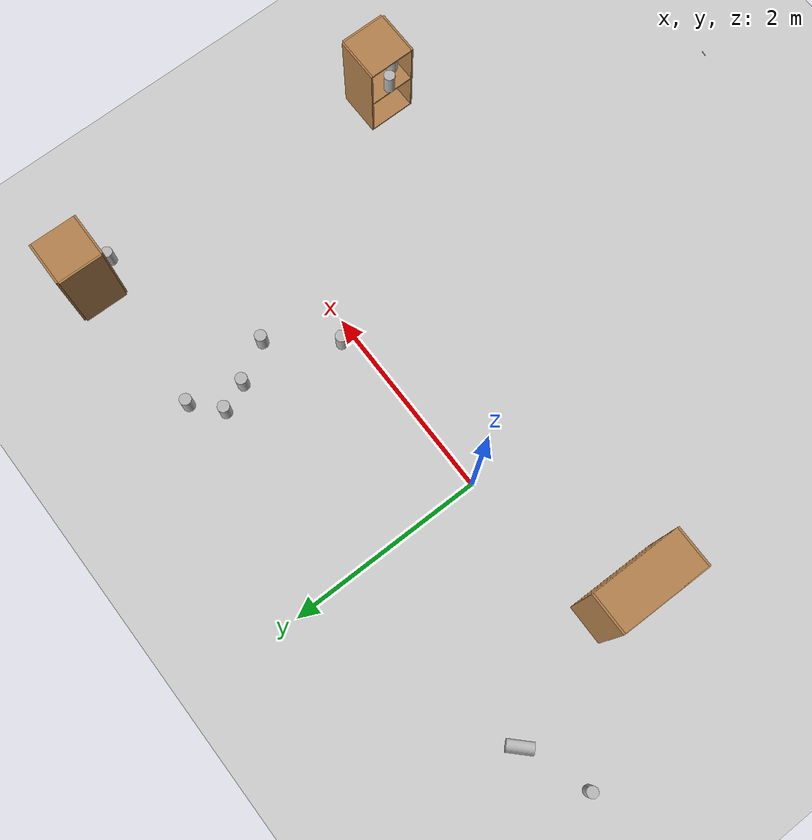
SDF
<sdf version="1.4">
 <world name="default">
  <model name="ground_plane">
   <static>1</static>
   <link name="link">
    <collision name="collision">
     <geometry><plane><normal>0 0 1</normal><size>100 100</size></plane></geometry>
     <surface><friction><ode><mu>100</mu><mu2>50</mu2></ode></friction></surface>
    </collision>
    <visual name="visual">
     <cast_shadows>0</cast_shadows>
     <geometry><plane><normal>0 0 1</normal><size>100 100</size></plane></geometry>
     <material>
      <script><uri>file://media/materials/scripts/gazebo.material</uri><name>Gazebo/Grey</name></script>
     </material>
    </visual>
    <velocity_decay><linear>0</linear><angular>0</angular></velocity_decay>
   </link>
  </model>
  <model name="metal_peg">
   <link name="link">
    <pose>0 0 0.031 0 -0 0</pose>
    <inertial>
     <mass>0.0121</mass>
     <inertia>
      <ixx>3.90898e-06</ixx>
      <ixy>0</ixy>
      <ixz>0</ixz>
      <iyy>3.90898e-06</iyy>
      <iyz>0</iyz>
      <izz>6.58845e-08</izz>
     </inertia>
    </inertial>
    <collision name="collision">
     <geometry><cylinder><radius>0.0033</radius><length>0.062</length></cylinder></geometry>
    </collision>
    <visual name="visual">
     <geometry><cylinder><radius>0.0033</radius><length>0.062</length></cylinder></geometry>
     <material>
      <script><uri>file://media/materials/scripts/gazebo.material</uri><name>Gazebo/Grey</name></script>
     </material>
    </visual>
    <velocity_decay><linear>0</linear><angular>0</angular></velocity_decay>
   </link>
   <pose>2.08159 -4.653 0.0083 1.5708 -1.50271 -1.71264</pose>
   <static>0</static>
  </model>
  <model name="cabinet_10">
   <static>1</static>
   <link name="cabinet_bottom_plate">
    <inertial>
     <pose>0 0 -1 0 -0 0</pose>
     <inertia><ixx>2.05</ixx><ixy>0</ixy><ixz>0</ixz><iyy>2.05</iyy><iyz>0</iyz><izz>2.05</izz></inertia>
     <mass>25</mass>
    </inertial>
    <collision name="cabinet_bottom_plate_geom">
     <pose>0 0 0.01 0 -0 0</pose>
     <geometry><box><size>0.45 0.45 0.02</size></box></geometry>
    </collision>
    <visual name="cabinet_bottom_plate_geom_visual">
     <pose>0 0 0.01 0 -0 0</pose>
     <geometry><box><size>0.45 0.45 0.02</size></box></geometry>
     <material>
      <script><uri>file://media/materials/scripts/gazebo.material</uri><name>Gazebo/Wood</name></script>
     </material>
    </visual>
    <collision name="cabinet_bottom_plate_geom_cabinet_back_plate">
     <pose>0.235 0 0.51 0 -0 0</pose>
     <geometry><box><size>0.02 0.45 1.02</size></box></geometry>
    </collision>
    <visual name="cabinet_bottom_plate_geom_cabinet_back_plate_visual">
     <pose>0.235 0 0.51 0 -0 0</pose>
     <geometry><box><size>0.02 0.45 1.02</size></box></geometry>
     <material>
      <script><uri>file://media/materials/scripts/gazebo.material</uri><name>Gazebo/Wood</name></script>
     </material>
    </visual>
    <collision name="cabinet_bottom_plate_geom_cabinet_left_plate">
     <pose>0 0.235 0.51 0 -0 0</pose>
     <geometry><box><size>0.45 0.02 1.02</size></box></geometry>
    </collision>
    <visual name="cabinet_bottom_plate_geom_cabinet_left_plate_visual">
     <pose>0 0.235 0.51 0 -0 0</pose>
     <geometry><box><size>0.45 0.02 1.02</size></box></geometry>
     <material>
      <script><uri>file://media/materials/scripts/gazebo.material</uri><name>Gazebo/Wood</name></script>
     </material>
    </visual>
    <collision name="cabinet_bottom_plate_geom_cabinet_middle_plate">
     <pose>0 0 0.51 0 -0 0</pose>
     <geometry><box><size>0.45 0.45 0.02</size></box></geometry>
    </collision>
    <visual name="cabinet_bottom_plate_geom_cabinet_middle_plate_visual">
     <pose>0 0 0.51 0 -0 0</pose>
     <geometry><box><size>0.45 0.45 0.02</size></box></geometry>
     <material>
      <script><uri>file://media/materials/scripts/gazebo.material</uri><name>Gazebo/Wood</name></script>
     </material>
    </visual>
    <collision name="cabinet_bottom_plate_geom_cabinet_right_plate">
     <pose>0 -0.235 0.51 0 -0 0</pose>
     <geometry><box><size>0.45 0.02 1.02</size></box></geometry>
    </collision>
    <visual name="cabinet_bottom_plate_geom_cabinet_right_plate_visual">
     <pose>0 -0.235 0.51 0 -0 0</pose>
     <geometry><box><size>0.45 0.02 1.02</size></box></geometry>
     <material>
      <script><uri>file://media/materials/scripts/gazebo.material</uri><name>Gazebo/Wood</name></script>
     </material>
    </visual>
    <collision name="cabinet_bottom_plate_geom_cabinet_top_plate">
     <pose>0 0 1.01 0 -0 0</pose>
     <geometry><box><size>0.45 0.45 0.02</size></box></geometry>
    </collision>
    <visual name="cabinet_bottom_plate_geom_cabinet_top_plate_visual">
     <pose>0 0 1.01 0 -0 0</pose>
     <geometry><box><size>0.45 0.45 0.02</size></box></geometry>
     <material>
      <script><uri>file://media/materials/scripts/gazebo.material</uri><name>Gazebo/Wood</name></script>
     </material>
    </visual>
    <velocity_decay><linear>0</linear><angular>0</angular></velocity_decay>
   </link>
   <pose>3.64666 -1.69853 0 0 -0 0</pose>
  </model>
  <model name="bookshelf_1">
   <static>1</static>
   <link name="link">
    <inertial><mass>1</mass></inertial>
    <collision name="back">
     <pose>0 0.005 0.6 0 -0 0</pose>
     <geometry><box><size>0.9 0.01 1.2</size></box></geometry>
    </collision>
    <visual name="visual1">
     <pose>0 0.005 0.6 0 -0 0</pose>
     <geometry><box><size>0.9 0.01 1.2</size></box></geometry>
     <material>
      <script><uri>file://media/materials/scripts/gazebo.material</uri><name>Gazebo/Wood</name></script>
     </material>
    </visual>
    <collision name="left_side">
     <pose>0.45 -0.195 0.6 0 -0 0</pose>
     <geometry><box><size>0.02 0.4 1.2</size></box></geometry>
    </collision>
    <visual name="visual2">
     <pose>0.45 -0.195 0.6 0 -0 0</pose>
     <geometry><box><size>0.02 0.4 1.2</size></box></geometry>
     <material>
      <script><uri>file://media/materials/scripts/gazebo.material</uri><name>Gazebo/Wood</name></script>
     </material>
    </visual>
    <collision name="right_side">
     <pose>-0.45 -0.195 0.6 0 -0 0</pose>
     <geometry><box><size>0.02 0.4 1.2</size></box></geometry>
    </collision>
    <visual name="visual3">
     <pose>-0.45 -0.195 0.6 0 -0 0</pose>
     <geometry><box><size>0.02 0.4 1.2</size></box></geometry>
     <material>
      <script><uri>file://media/materials/scripts/gazebo.material</uri><name>Gazebo/Wood</name></script>
     </material>
    </visual>
    <collision name="bottom">
     <pose>0 -0.195 0.03 0 -0 0</pose>
     <geometry><box><size>0.88 0.4 0.06</size></box></geometry>
    </collision>
    <visual name="visual4">
     <pose>0 -0.195 0.03 0 -0 0</pose>
     <geometry><box><size>0.88 0.4 0.06</size></box></geometry>
     <material>
      <script><uri>file://media/materials/scripts/gazebo.material</uri><name>Gazebo/Wood</name></script>
     </material>
    </visual>
    <collision name="top">
     <pose>0 -0.195 1.19 0 -0 0</pose>
     <geometry><box><size>0.88 0.4 0.02</size></box></geometry>
    </collision>
    <visual name="visual5">
     <pose>0 -0.195 1.19 0 -0 0</pose>
     <geometry><box><size>0.88 0.4 0.02</size></box></geometry>
     <material>
      <script><uri>file://media/materials/scripts/gazebo.material</uri><name>Gazebo/Wood</name></script>
     </material>
    </visual>
    <collision name="low_shelf">
     <pose>0 -0.195 0.43 0 -0 0</pose>
     <geometry><box><size>0.88 0.4 0.02</size></box></geometry>
    </collision>
    <visual name="visual6">
     <pose>0 -0.195 0.43 0 -0 0</pose>
     <geometry><box><size>0.88 0.4 0.02</size></box></geometry>
     <material>
      <script><uri>file://media/materials/scripts/gazebo.material</uri><name>Gazebo/Wood</name></script>
     </material>
    </visual>
    <collision name="high_shelf">
     <pose>0 -0.195 0.8 0 -0 0</pose>
     <geometry><box><size>0.88 0.4 0.02</size></box></geometry>
    </collision>
    <visual name="visual7">
     <pose>0 -0.195 0.8 0 -0 0</pose>
     <geometry><box><size>0.88 0.4 0.02</size></box></geometry>
     <material>
      <script><uri>file://media/materials/scripts/gazebo.material</uri><name>Gazebo/Wood</name></script>
     </material>
    </visual>
    <velocity_decay><linear>0</linear><angular>0</angular></velocity_decay>
   </link>
   <pose>-1.81139 -0.460796 0 0 -0 1.56125</pose>
  </model>
  <model name="beer">
   <link name="link">
    <pose>0 0 0.115 0 -0 0</pose>
    <inertial>
     <mass>0.39</mass>
     <inertia><ixx>0.00058</ixx><ixy>0</ixy><ixz>0</ixz><iyy>0.00058</iyy><iyz>0</iyz><izz>0.00019</izz></inertia>
    </inertial>
    <collision name="collision">
     <geometry><cylinder><radius>0.055</radius><length>0.23</length></cylinder></geometry>
    </collision>
    <visual name="visual">
     <geometry><cylinder><radius>0.055</radius><length>0.23</length></cylinder></geometry>
     <material>
      <script>
       <uri>model://beer/materials/scripts</uri>
       <uri>model://beer/materials/textures</uri>
       <name>Beer/Diffuse</name>
      </script>
     </material>
    </visual>
    <velocity_decay><linear>0</linear><angular>0</angular></velocity_decay>
   </link>
   <pose>2.03763 0.806368 0.774992 -2.64698e-23 -2.7e-05 0.008167</pose>
   <static>0</static>
  </model>
  <model name="beer_0">
   <link name="link">
    <pose>0 0 0.115 0 -0 0</pose>
    <inertial>
     <mass>0.39</mass>
     <inertia><ixx>0.00058</ixx><ixy>0</ixy><ixz>0</ixz><iyy>0.00058</iyy><iyz>0</iyz><izz>0.00019</izz></inertia>
    </inertial>
    <collision name="collision">
     <geometry><cylinder><radius>0.055</radius><length>0.23</length></cylinder></geometry>
    </collision>
    <visual name="visual">
     <geometry><cylinder><radius>0.055</radius><length>0.23</length></cylinder></geometry>
     <material>
      <script>
       <uri>model://beer/materials/scripts</uri>
       <uri>model://beer/materials/textures</uri>
       <name>Beer/Diffuse</name>
      </script>
     </material>
    </visual>
    <velocity_decay><linear>0</linear><angular>0</angular></velocity_decay>
   </link>
   <pose>1.96412 1.65048 0.774991 1.4e-05 1e-06 0.026666</pose>
   <static>0</static>
  </model>
  <model name="beer_1">
   <link name="link">
    <pose>0 0 0.115 0 -0 0</pose>
    <inertial>
     <mass>0.39</mass>
     <inertia><ixx>0.00058</ixx><ixy>0</ixy><ixz>0</ixz><iyy>0.00058</iyy><iyz>0</iyz><izz>0.00019</izz></inertia>
    </inertial>
    <collision name="collision">
     <geometry><cylinder><radius>0.055</radius><length>0.23</length></cylinder></geometry>
    </collision>
    <visual name="visual">
     <geometry><cylinder><radius>0.055</radius><length>0.23</length></cylinder></geometry>
     <material>
      <script>
       <uri>model://beer/materials/scripts</uri>
       <uri>model://beer/materials/textures</uri>
       <name>Beer/Diffuse</name>
      </script>
     </material>
    </visual>
    <velocity_decay><linear>0</linear><angular>0</angular></velocity_decay>
   </link>
   <pose>1.6067 0.252694 0.775003 1e-05 4.6e-05 -0.001375</pose>
   <static>0</static>
  </model>
  <model name="beer_2">
   <link name="link">
    <pose>0 0 0.115 0 -0 0</pose>
    <inertial>
     <mass>0.39</mass>
     <inertia><ixx>0.00058</ixx><ixy>0</ixy><ixz>0</ixz><iyy>0.00058</iyy><iyz>0</iyz><izz>0.00019</izz></inertia>
    </inertial>
    <collision name="collision">
     <geometry><cylinder><radius>0.055</radius><length>0.23</length></cylinder></geometry>
    </collision>
    <visual name="visual">
     <geometry><cylinder><radius>0.055</radius><length>0.23</length></cylinder></geometry>
     <material>
      <script>
       <uri>model://beer/materials/scripts</uri>
       <uri>model://beer/materials/textures</uri>
       <name>Beer/Diffuse</name>
      </script>
     </material>
    </visual>
    <velocity_decay><linear>0</linear><angular>0</angular></velocity_decay>
   </link>
   <pose>1.82535 1.16439 0.775003 1.2e-05 6.1e-05 0.015319</pose>
   <static>0</static>
  </model>
  <model name="beer_3">
   <link name="link">
    <pose>0 0 0.115 0 -0 0</pose>
    <inertial>
     <mass>0.39</mass>
     <inertia><ixx>0.00058</ixx><ixy>0</ixy><ixz>0</ixz><iyy>0.00058</iyy><iyz>0</iyz><izz>0.00019</izz></inertia>
    </inertial>
    <collision name="collision">
     <geometry><cylinder><radius>0.055</radius><length>0.23</length></cylinder></geometry>
    </collision>
    <visual name="visual">
     <geometry><cylinder><radius>0.055</radius><length>0.23</length></cylinder></geometry>
     <material>
      <script>
       <uri>model://beer/materials/scripts</uri>
       <uri>model://beer/materials/textures</uri>
       <name>Beer/Diffuse</name>
      </script>
     </material>
    </visual>
    <velocity_decay><linear>0</linear><angular>0</angular></velocity_decay>
   </link>
   <pose>1.7148 1.42887 0.775001 1e-06 -2.7e-05 0.006422</pose>
   <static>0</static>
  </model>
  <model name="beer_4">
   <link name="link">
    <pose>0 0 0.115 0 -0 0</pose>
    <inertial>
     <mass>0.39</mass>
     <inertia><ixx>0.00058</ixx><ixy>0</ixy><ixz>0</ixz><iyy>0.00058</iyy><iyz>0</iyz><izz>0.00019</izz></inertia>
    </inertial>
    <collision name="collision">
     <geometry><cylinder><radius>0.055</radius><length>0.23</length></cylinder></geometry>
    </collision>
    <visual name="visual">
     <geometry><cylinder><radius>0.055</radius><length>0.23</length></cylinder></geometry>
     <material>
      <script>
       <uri>model://beer/materials/scripts</uri>
       <uri>model://beer/materials/textures</uri>
       <name>Beer/Diffuse</name>
      </script>
     </material>
    </visual>
    <velocity_decay><linear>0</linear><angular>0</angular></velocity_decay>
   </link>
   <pose>3.65491 -1.54864 0.520002 3e-05 -1.8e-05 -0.002604</pose>
   <static>0</static>
  </model>
  <model name="beer_5">
   <link name="link">
    <pose>0 0 0.115 0 -0 0</pose>
    <inertial>
     <mass>0.39</mass>
     <inertia><ixx>0.00058</ixx><ixy>0</ixy><ixz>0</ixz><iyy>0.00058</iyy><iyz>0</iyz><izz>0.00019</izz></inertia>
    </inertial>
    <collision name="collision">
     <geometry><cylinder><radius>0.055</radius><length>0.23</length></cylinder></geometry>
    </collision>
    <visual name="visual">
     <geometry><cylinder><radius>0.055</radius><length>0.23</length></cylinder></geometry>
     <material>
      <script>
       <uri>model://beer/materials/scripts</uri>
       <uri>model://beer/materials/textures</uri>
       <name>Beer/Diffuse</name>
      </script>
     </material>
    </visual>
    <velocity_decay><linear>0</linear><angular>0</angular></velocity_decay>
   </link>
   <pose>3.4665 -1.69776 0.52 -3e-06 -1e-06 0.036562</pose>
   <static>0</static>
  </model>
  <model name="beer_6">
   <link name="link">
    <pose>0 0 0.115 0 -0 0</pose>
    <inertial>
     <mass>0.39</mass>
     <inertia><ixx>0.00058</ixx><ixy>0</ixy><ixz>0</ixz><iyy>0.00058</iyy><iyz>0</iyz><izz>0.00019</izz></inertia>
    </inertial>
    <collision name="collision">
     <geometry><cylinder><radius>0.055</radius><length>0.23</length></cylinder></geometry>
    </collision>
    <visual name="visual">
     <geometry><cylinder><radius>0.055</radius><length>0.23</length></cylinder></geometry>
     <material>
      <script>
       <uri>model://beer/materials/scripts</uri>
       <uri>model://beer/materials/textures</uri>
       <name>Beer/Diffuse</name>
      </script>
     </material>
    </visual>
    <velocity_decay><linear>0</linear><angular>0</angular></velocity_decay>
   </link>
   <pose>3.61957 -1.84364 0.519992 2.5e-05 9e-06 0.014078</pose>
   <static>0</static>
  </model>
  <model name="cabinet">
   <static>1</static>
   <link name="cabinet_bottom_plate">
    <inertial>
     <pose>0 0 -1 0 -0 0</pose>
     <inertia><ixx>2.05</ixx><ixy>0</ixy><ixz>0</ixz><iyy>2.05</iyy><iyz>0</iyz><izz>2.05</izz></inertia>
     <mass>25</mass>
    </inertial>
    <collision name="cabinet_bottom_plate_geom">
     <pose>0 0 0.01 0 -0 0</pose>
     <geometry><box><size>0.45 0.45 0.02</size></box></geometry>
    </collision>
    <visual name="cabinet_bottom_plate_geom_visual">
     <pose>0 0 0.01 0 -0 0</pose>
     <geometry><box><size>0.45 0.45 0.02</size></box></geometry>
     <material>
      <script><uri>file://media/materials/scripts/gazebo.material</uri><name>Gazebo/Wood</name></script>
     </material>
    </visual>
    <collision name="cabinet_bottom_plate_geom_cabinet_back_plate">
     <pose>0.235 0 0.51 0 -0 0</pose>
     <geometry><box><size>0.02 0.45 1.02</size></box></geometry>
    </collision>
    <visual name="cabinet_bottom_plate_geom_cabinet_back_plate_visual">
     <pose>0.235 0 0.51 0 -0 0</pose>
     <geometry><box><size>0.02 0.45 1.02</size></box></geometry>
     <material>
      <script><uri>file://media/materials/scripts/gazebo.material</uri><name>Gazebo/Wood</name></script>
     </material>
    </visual>
    <collision name="cabinet_bottom_plate_geom_cabinet_left_plate">
     <pose>0 0.235 0.51 0 -0 0</pose>
     <geometry><box><size>0.45 0.02 1.02</size></box></geometry>
    </collision>
    <visual name="cabinet_bottom_plate_geom_cabinet_left_plate_visual">
     <pose>0 0.235 0.51 0 -0 0</pose>
     <geometry><box><size>0.45 0.02 1.02</size></box></geometry>
     <material>
      <script><uri>file://media/materials/scripts/gazebo.material</uri><name>Gazebo/Wood</name></script>
     </material>
    </visual>
    <collision name="cabinet_bottom_plate_geom_cabinet_middle_plate">
     <pose>0 0 0.51 0 -0 0</pose>
     <geometry><box><size>0.45 0.45 0.02</size></box></geometry>
    </collision>
    <visual name="cabinet_bottom_plate_geom_cabinet_middle_plate_visual">
     <pose>0 0 0.51 0 -0 0</pose>
     <geometry><box><size>0.45 0.45 0.02</size></box></geometry>
     <material>
      <script><uri>file://media/materials/scripts/gazebo.material</uri><name>Gazebo/Wood</name></script>
     </material>
    </visual>
    <collision name="cabinet_bottom_plate_geom_cabinet_right_plate">
     <pose>0 -0.235 0.51 0 -0 0</pose>
     <geometry><box><size>0.45 0.02 1.02</size></box></geometry>
    </collision>
    <visual name="cabinet_bottom_plate_geom_cabinet_right_plate_visual">
     <pose>0 -0.235 0.51 0 -0 0</pose>
     <geometry><box><size>0.45 0.02 1.02</size></box></geometry>
     <material>
      <script><uri>file://media/materials/scripts/gazebo.material</uri><name>Gazebo/Wood</name></script>
     </material>
    </visual>
    <collision name="cabinet_bottom_plate_geom_cabinet_top_plate">
     <pose>0 0 1.01 0 -0 0</pose>
     <geometry><box><size>0.45 0.45 0.02</size></box></geometry>
    </collision>
    <visual name="cabinet_bottom_plate_geom_cabinet_top_plate_visual">
     <pose>0 0 1.01 0 -0 0</pose>
     <geometry><box><size>0.45 0.45 0.02</size></box></geometry>
     <material>
      <script><uri>file://media/materials/scripts/gazebo.material</uri><name>Gazebo/Wood</name></script>
     </material>
    </visual>
    <velocity_decay><linear>0</linear><angular>0</angular></velocity_decay>
   </link>
   <pose>3.72465 1.7021 0 0 -0 3.13097</pose>
  </model>
  <model name="beer_7">
   <link name="link">
    <pose>0 0 0.115 0 -0 0</pose>
    <inertial>
     <mass>0.39</mass>
     <inertia><ixx>0.00058</ixx><ixy>0</ixy><ixz>0</ixz><iyy>0.00058</iyy><iyz>0</iyz><izz>0.00019</izz></inertia>
    </inertial>
    <collision name="collision">
     <geometry><cylinder><radius>0.055</radius><length>0.23</length></cylinder></geometry>
    </collision>
    <visual name="visual">
     <geometry><cylinder><radius>0.055</radius><length>0.23</length></cylinder></geometry>
     <material>
      <script>
       <uri>model://beer/materials/scripts</uri>
       <uri>model://beer/materials/textures</uri>
       <name>Beer/Diffuse</name>
      </script>
     </material>
    </visual>
    <velocity_decay><linear>0</linear><angular>0</angular></velocity_decay>
   </link>
   <pose>-1.90224 1.26492 1.06 -1.57081 -0.090558 2.36008</pose>
   <static>0</static>
  </model>
  <model name="beer_8">
   <link name="link">
    <pose>0 0 0.115 0 -0 0</pose>
    <inertial>
     <mass>0.39</mass>
     <inertia><ixx>0.00058</ixx><ixy>0</ixy><ixz>0</ixz><iyy>0.00058</iyy><iyz>0</iyz><izz>0.00019</izz></inertia>
    </inertial>
    <collision name="collision">
     <geometry><cylinder><radius>0.055</radius><length>0.23</length></cylinder></geometry>
    </collision>
    <visual name="visual">
     <geometry><cylinder><radius>0.055</radius><length>0.23</length></cylinder></geometry>
     <material>
      <script>
       <uri>model://beer/materials/scripts</uri>
       <uri>model://beer/materials/textures</uri>
       <name>Beer/Diffuse</name>
      </script>
     </material>
    </visual>
    <velocity_decay><linear>0</linear><angular>0</angular></velocity_decay>
   </link>
   <pose>-1.73953 -0.405376 0.809991 -3e-06 1.9e-05 0.004486</pose>
   <static>0</static>
  </model>
  <model name="beer_9">
   <link name="link">
    <pose>0 0 0.115 0 -0 0</pose>
    <inertial>
     <mass>0.39</mass>
     <inertia><ixx>0.00058</ixx><ixy>0</ixy><ixz>0</ixz><iyy>0.00058</iyy><iyz>0</iyz><izz>0.00019</izz></inertia>
    </inertial>
    <collision name="collision">
     <geometry><cylinder><radius>0.055</radius><length>0.23</length></cylinder></geometry>
    </collision>
    <visual name="visual">
     <geometry><cylinder><radius>0.055</radius><length>0.23</length></cylinder></geometry>
     <material>
      <script>
       <uri>model://beer/materials/scripts</uri>
       <uri>model://beer/materials/textures</uri>
       <name>Beer/Diffuse</name>
      </script>
     </material>
    </visual>
    <velocity_decay><linear>0</linear><angular>0</angular></velocity_decay>
   </link>
   <pose>-1.5997 -0.753574 0.809992 3.4e-05 -0 0.004404</pose>
   <static>0</static>
  </model>
  <model name="beer_10">
   <link name="link">
    <pose>0 0 0.115 0 -0 0</pose>
    <inertial>
     <mass>0.39</mass>
     <inertia><ixx>0.00058</ixx><ixy>0</ixy><ixz>0</ixz><iyy>0.00058</iyy><iyz>0</iyz><izz>0.00019</izz></inertia>
    </inertial>
    <collision name="collision">
     <geometry><cylinder><radius>0.055</radius><length>0.23</length></cylinder></geometry>
    </collision>
    <visual name="visual">
     <geometry><cylinder><radius>0.055</radius><length>0.23</length></cylinder></geometry>
     <material>
      <script>
       <uri>model://beer/materials/scripts</uri>
       <uri>model://beer/materials/textures</uri>
       <name>Beer/Diffuse</name>
      </script>
     </material>
    </visual>
    <velocity_decay><linear>0</linear><angular>0</angular></velocity_decay>
   </link>
   <pose>-2.71386 0.871892 0.005003 4.4e-05 -4.2e-05 0.000105</pose>
   <static>0</static>
  </model>
  <model name="beer_11">
   <link name="link">
    <pose>0 0 0.115 0 -0 0</pose>
    <inertial>
     <mass>0.39</mass>
     <inertia><ixx>0.00058</ixx><ixy>0</ixy><ixz>0</ixz><iyy>0.00058</iyy><iyz>0</iyz><izz>0.00019</izz></inertia>
    </inertial>
    <collision name="collision">
     <geometry><cylinder><radius>0.055</radius><length>0.23</length></cylinder></geometry>
    </collision>
    <visual name="visual">
     <geometry><cylinder><radius>0.055</radius><length>0.23</length></cylinder></geometry>
     <material>
      <script>
       <uri>model://beer/materials/scripts</uri>
       <uri>model://beer/materials/textures</uri>
       <name>Beer/Diffuse</name>
      </script>
     </material>
    </visual>
    <velocity_decay><linear>0</linear><angular>0</angular></velocity_decay>
   </link>
   <pose>3.85337 1.39891 0.004991 -3e-06 -9e-06 -3e-05</pose>
   <static>0</static>
  </model>
 </world>
</sdf>
